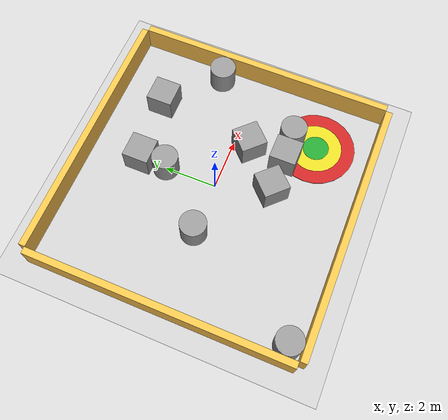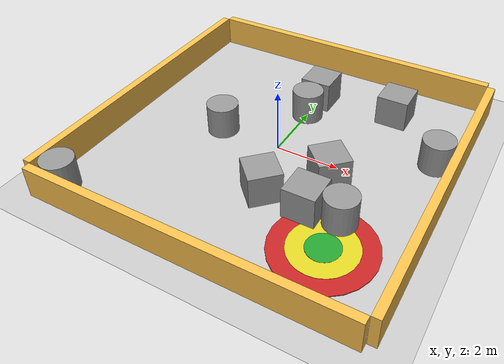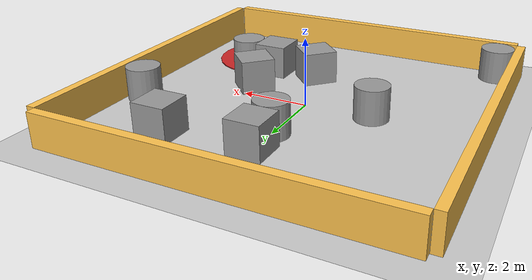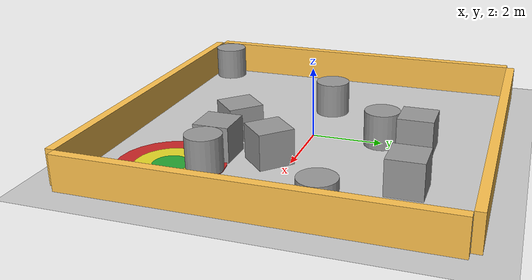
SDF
<sdf version="1.6">
 <world name="default">
  <light name="sun" type="directional">
   <pose>0 0 10 0 -0 0</pose>
   <diffuse>0.8 0.8 0.8 1</diffuse>
   <specular>0.2 0.2 0.2 1</specular>
   <attenuation>
    <range>1000</range>
    <constant>0.9</constant>
    <linear>0.01</linear>
    <quadratic>0.001</quadratic>
   </attenuation>
   <direction>0.5 0.1 -0.9</direction>
  </light>
  <model name="ground_plane">
   <static>1</static>
   <link name="link">
    <collision name="collision">
     <geometry><plane><normal>0 0 1</normal><size>100 100</size></plane></geometry>
     <surface><friction><ode><mu>100</mu><mu2>50</mu2></ode></friction></surface>
    </collision>
    <visual name="visual">
     <cast_shadows>0</cast_shadows>
     <geometry><plane><normal>0 0 1</normal><size>100 100</size></plane></geometry>
     <material>
      <script><uri>file://media/materials/scripts/gazebo.material</uri><name>Gazebo/Grey</name></script>
     </material>
    </visual>
    <velocity_decay><linear>0</linear><angular>0</angular></velocity_decay>
   </link>
  </model>
  <scene><ambient>0.4 0.4 0.4 1</ambient><background>0.7 0.7 0.7 1</background><shadows>0</shadows></scene>
  <physics name="default_physics" default="0" type="ode">
   <max_step_size>0.01</max_step_size>
   <real_time_factor>1</real_time_factor>
   <real_time_update_rate>0</real_time_update_rate>
  </physics>
  <gravity>0 0 -9.8</gravity>
  <magnetic_field>6e-06 2.3e-05 -4.2e-05</magnetic_field>
  <atmosphere type="adiabatic"/>
  <audio><device>default</device></audio>
  <spherical_coordinates>
   <surface_model>EARTH_WGS84</surface_model>
   <latitude_deg>0</latitude_deg>
   <longitude_deg>0</longitude_deg>
   <elevation>0</elevation>
   <heading_deg>0</heading_deg>
  </spherical_coordinates>
  <model name="Boundaries">
   <link name="Wall_6">
    <pose>-2.4 -3.04601 0 0 -0 0</pose>
    <inertial>
     <inertia><ixx>0</ixx><ixy>0</ixy><ixz>0</ixz><iyy>0</iyy><iyz>0</iyz><izz>0</izz></inertia>
     <mass>0</mass>
    </inertial>
    <visual name="Wall_6_Visual">
     <pose>0 0 0.5 0 -0 0</pose>
     <geometry><box><size>10 0.253759 1</size></box></geometry>
     <material>
      <script><uri>file://media/materials/scripts/gazebo.material</uri><name>Gazebo/Grey</name></script>
      <ambient>1 0.764706 0.305882 1</ambient>
      <diffuse>0.7 0.7 0.7 1</diffuse>
      <specular>0.01 0.01 0.01 1</specular>
      <emissive>0 0 0 1</emissive>
      <shader type="pixel"/>
     </material>
    </visual>
    <collision name="Wall_6_Collision">
     <pose>0 0 0.5 0 -0 0</pose>
     <geometry><box><size>10 0.253759 1</size></box></geometry>
     <surface>
      <friction>
       <ode><mu>1</mu><mu2>1</mu2><fdir1>0 0 0</fdir1><slip1>0</slip1><slip2>0</slip2></ode>
       <torsional>
        <coefficient>1</coefficient>
        <patch_radius>0</patch_radius>
        <surface_radius>0</surface_radius>
        <use_patch_radius>1</use_patch_radius>
        <ode><slip>0</slip></ode>
       </torsional>
      </friction>
      <bounce><restitution_coefficient>0</restitution_coefficient><threshold>1e+06</threshold></bounce>
      <contact>
       <collide_without_contact>0</collide_without_contact>
       <collide_without_contact_bitmask>1</collide_without_contact_bitmask>
       <collide_bitmask>1</collide_bitmask>
       <ode>
        <soft_cfm>0</soft_cfm>
        <soft_erp>0.2</soft_erp>
        <kp>1e+13</kp>
        <kd>1</kd>
        <max_vel>0.01</max_vel>
        <min_depth>0</min_depth>
       </ode>
       <bullet>
        <split_impulse>1</split_impulse>
        <split_impulse_penetration_threshold>-0.01</split_impulse_penetration_threshold>
        <soft_cfm>0</soft_cfm>
        <soft_erp>0.2</soft_erp>
        <kp>1e+13</kp>
        <kd>1</kd>
       </bullet>
      </contact>
     </surface>
    </collision>
   </link>
   <link name="Wall_6_clone">
    <pose>-7.53349 2.1 0 0 0 -1.5708</pose>
    <inertial>
     <inertia><ixx>0</ixx><ixy>0</ixy><ixz>0</ixz><iyy>0</iyy><iyz>0</iyz><izz>0</izz></inertia>
     <mass>0</mass>
    </inertial>
    <visual name="Wall_6_Visual">
     <pose>0 0 0.5 0 -0 0</pose>
     <geometry><box><size>10 0.253759 1</size></box></geometry>
     <material>
      <script><uri>file://media/materials/scripts/gazebo.material</uri><name>Gazebo/Grey</name></script>
      <ambient>1 0.764706 0.305882 1</ambient>
      <diffuse>0.7 0.7 0.7 1</diffuse>
      <specular>0.01 0.01 0.01 1</specular>
      <emissive>0 0 0 1</emissive>
      <shader type="pixel"/>
     </material>
    </visual>
    <collision name="Wall_6_Collision">
     <pose>0 0 0.5 0 -0 0</pose>
     <geometry><box><size>10 0.253759 1</size></box></geometry>
     <surface>
      <friction>
       <ode><mu>1</mu><mu2>1</mu2><fdir1>0 0 0</fdir1><slip1>0</slip1><slip2>0</slip2></ode>
       <torsional>
        <coefficient>1</coefficient>
        <patch_radius>0</patch_radius>
        <surface_radius>0</surface_radius>
        <use_patch_radius>1</use_patch_radius>
        <ode><slip>0</slip></ode>
       </torsional>
      </friction>
      <bounce><restitution_coefficient>0</restitution_coefficient><threshold>1e+06</threshold></bounce>
      <contact>
       <collide_without_contact>0</collide_without_contact>
       <collide_without_contact_bitmask>1</collide_without_contact_bitmask>
       <collide_bitmask>1</collide_bitmask>
       <ode>
        <soft_cfm>0</soft_cfm>
        <soft_erp>0.2</soft_erp>
        <kp>1e+13</kp>
        <kd>1</kd>
        <max_vel>0.01</max_vel>
        <min_depth>0</min_depth>
       </ode>
       <bullet>
        <split_impulse>1</split_impulse>
        <split_impulse_penetration_threshold>-0.01</split_impulse_penetration_threshold>
        <soft_cfm>0</soft_cfm>
        <soft_erp>0.2</soft_erp>
        <kp>1e+13</kp>
        <kd>1</kd>
       </bullet>
      </contact>
     </surface>
    </collision>
   </link>
   <link name="Wall_6_clone_clone">
    <pose>-2.4 7.21616 0 0 -0 3.14159</pose>
    <inertial>
     <inertia><ixx>0</ixx><ixy>0</ixy><ixz>0</ixz><iyy>0</iyy><iyz>0</iyz><izz>0</izz></inertia>
     <mass>0</mass>
    </inertial>
    <visual name="Wall_6_Visual">
     <pose>0 0 0.5 0 -0 0</pose>
     <geometry><box><size>10 0.253759 1</size></box></geometry>
     <material>
      <script><uri>file://media/materials/scripts/gazebo.material</uri><name>Gazebo/Grey</name></script>
      <ambient>1 0.765 0.306 1</ambient>
      <diffuse>0.7 0.7 0.7 1</diffuse>
      <specular>0.01 0.01 0.01 1</specular>
      <emissive>0 0 0 1</emissive>
      <shader type="pixel"><normal_map>__default__</normal_map></shader>
     </material>
    </visual>
    <collision name="Wall_6_Collision">
     <pose>0 0 0.5 0 -0 0</pose>
     <geometry><box><size>10 0.253759 1</size></box></geometry>
     <surface>
      <friction>
       <ode><mu>1</mu><mu2>1</mu2><fdir1>0 0 0</fdir1><slip1>0</slip1><slip2>0</slip2></ode>
       <torsional>
        <coefficient>1</coefficient>
        <patch_radius>0</patch_radius>
        <surface_radius>0</surface_radius>
        <use_patch_radius>1</use_patch_radius>
        <ode><slip>0</slip></ode>
       </torsional>
      </friction>
      <bounce><restitution_coefficient>0</restitution_coefficient><threshold>1e+06</threshold></bounce>
      <contact>
       <collide_without_contact>0</collide_without_contact>
       <collide_without_contact_bitmask>1</collide_without_contact_bitmask>
       <collide_bitmask>1</collide_bitmask>
       <ode>
        <soft_cfm>0</soft_cfm>
        <soft_erp>0.2</soft_erp>
        <kp>1e+13</kp>
        <kd>1</kd>
        <max_vel>0.01</max_vel>
        <min_depth>0</min_depth>
       </ode>
       <bullet>
        <split_impulse>1</split_impulse>
        <split_impulse_penetration_threshold>-0.01</split_impulse_penetration_threshold>
        <soft_cfm>0</soft_cfm>
        <soft_erp>0.2</soft_erp>
        <kp>1e+13</kp>
        <kd>1</kd>
       </bullet>
      </contact>
     </surface>
    </collision>
   </link>
   <link name="Wall_6_clone_clone_0">
    <pose>2.73718 2.0846 0 0 0 -1.5708</pose>
    <inertial>
     <inertia><ixx>0</ixx><ixy>0</ixy><ixz>0</ixz><iyy>0</iyy><iyz>0</iyz><izz>0</izz></inertia>
     <mass>0</mass>
    </inertial>
    <visual name="Wall_6_Visual">
     <pose>0 0 0.5 0 -0 0</pose>
     <geometry><box><size>10 0.253759 1</size></box></geometry>
     <material>
      <script><uri>file://media/materials/scripts/gazebo.material</uri><name>Gazebo/Grey</name></script>
      <ambient>1 0.764706 0.305882 1</ambient>
      <diffuse>0.7 0.7 0.7 1</diffuse>
      <specular>0.01 0.01 0.01 1</specular>
      <emissive>0 0 0 1</emissive>
      <shader type="pixel"/>
     </material>
    </visual>
    <collision name="Wall_6_Collision">
     <pose>0 0 0.5 0 -0 0</pose>
     <geometry><box><size>10 0.253759 1</size></box></geometry>
     <surface>
      <friction>
       <ode><mu>1</mu><mu2>1</mu2><fdir1>0 0 0</fdir1><slip1>0</slip1><slip2>0</slip2></ode>
       <torsional>
        <coefficient>1</coefficient>
        <patch_radius>0</patch_radius>
        <surface_radius>0</surface_radius>
        <use_patch_radius>1</use_patch_radius>
        <ode><slip>0</slip></ode>
       </torsional>
      </friction>
      <bounce><restitution_coefficient>0</restitution_coefficient><threshold>1e+06</threshold></bounce>
      <contact>
       <collide_without_contact>0</collide_without_contact>
       <collide_without_contact_bitmask>1</collide_without_contact_bitmask>
       <collide_bitmask>1</collide_bitmask>
       <ode>
        <soft_cfm>0</soft_cfm>
        <soft_erp>0.2</soft_erp>
        <kp>1e+13</kp>
        <kd>1</kd>
        <max_vel>0.01</max_vel>
        <min_depth>0</min_depth>
       </ode>
       <bullet>
        <split_impulse>1</split_impulse>
        <split_impulse_penetration_threshold>-0.01</split_impulse_penetration_threshold>
        <soft_cfm>0</soft_cfm>
        <soft_erp>0.2</soft_erp>
        <kp>1e+13</kp>
        <kd>1</kd>
       </bullet>
      </contact>
     </surface>
    </collision>
   </link>
   <static>1</static>
   <pose>2.39768 -2.08635 0 0 -0 0</pose>
  </model>
  <model name="Target">
   <static>1</static>
   <link name="green">
    <visual name="visual">
     <geometry><cylinder><radius>0.5</radius><length>0.05</length></cylinder></geometry>
     <material>
      <script><uri>file://media/materials/scripts/gazebo.material</uri><name>Gazebo/Green</name></script>
      <ambient>1 1 1 1</ambient>
     </material>
     <cast_shadows>0</cast_shadows>
    </visual>
   </link>
   <link name="yellow">
    <visual name="visual">
     <geometry><cylinder><radius>1</radius><length>0.04</length></cylinder></geometry>
     <material>
      <script><uri>file://media/materials/scripts/gazebo.material</uri><name>Gazebo/Yellow</name></script>
      <ambient>1 1 1 1</ambient>
     </material>
     <cast_shadows>0</cast_shadows>
    </visual>
   </link>
   <link name="red">
    <visual name="visual">
     <geometry><cylinder><radius>1.5</radius><length>0.03</length></cylinder></geometry>
     <material>
      <script><uri>file://media/materials/scripts/gazebo.material</uri><name>Gazebo/Red</name></script>
      <ambient>1 1 1 1</ambient>
     </material>
     <cast_shadows>0</cast_shadows>
    </visual>
   </link>
   <pose>3 -3 0 0 -0 0</pose>
  </model>
  <model name="unit_cylinder">
   <pose>4.49145 1.50804 0.499789 0.000422 0.000422 -1.4e-05</pose>
   <link name="link">
    <inertial>
     <mass>1</mass>
     <inertia><ixx>0.145833</ixx><ixy>0</ixy><ixz>0</ixz><iyy>0.145833</iyy><iyz>0</iyz><izz>0.125</izz></inertia>
    </inertial>
    <collision name="collision">
     <geometry><cylinder><radius>0.5</radius><length>1</length></cylinder></geometry>
    </collision>
    <visual name="visual">
     <geometry><cylinder><radius>0.5</radius><length>1</length></cylinder></geometry>
     <material>
      <script><name>Gazebo/Grey</name><uri>file://media/materials/scripts/gazebo.material</uri></script>
     </material>
    </visual>
   </link>
  </model>
  <model name="unit_cylinder_0">
   <pose>-4.50675 -4.49425 0.499789 0.000422 0.000422 -1.4e-05</pose>
   <link name="link">
    <inertial>
     <mass>1</mass>
     <inertia><ixx>0.145833</ixx><ixy>0</ixy><ixz>0</ixz><iyy>0.145833</iyy><iyz>0</iyz><izz>0.125</izz></inertia>
    </inertial>
    <collision name="collision">
     <geometry><cylinder><radius>0.5</radius><length>1</length></cylinder></geometry>
    </collision>
    <visual name="visual">
     <geometry><cylinder><radius>0.5</radius><length>1</length></cylinder></geometry>
     <material>
      <script><name>Gazebo/Grey</name><uri>file://media/materials/scripts/gazebo.material</uri></script>
     </material>
    </visual>
   </link>
  </model>
  <model name="unit_box">
   <pose>4.2e-05 2.99998 0.49912 0 -0 9e-06</pose>
   <link name="link">
    <inertial>
     <mass>1</mass>
     <inertia>
      <ixx>0.166667</ixx>
      <ixy>0</ixy>
      <ixz>0</ixz>
      <iyy>0.166667</iyy>
      <iyz>0</iyz>
      <izz>0.166667</izz>
     </inertia>
    </inertial>
    <collision name="collision"><geometry><box><size>1 1 1</size></box></geometry></collision>
    <visual name="visual">
     <geometry><box><size>1 1 1</size></box></geometry>
     <material>
      <script><name>Gazebo/Grey</name><uri>file://media/materials/scripts/gazebo.material</uri></script>
     </material>
    </visual>
   </link>
  </model>
  <model name="unit_cylinder_1">
   <pose>-4.9e-05 1.99964 0.49912 0 -0 3.6e-05</pose>
   <link name="link">
    <inertial>
     <mass>1</mass>
     <inertia><ixx>0.145833</ixx><ixy>0</ixy><ixz>0</ixz><iyy>0.145833</iyy><iyz>0</iyz><izz>0.125</izz></inertia>
    </inertial>
    <collision name="collision">
     <geometry><cylinder><radius>0.5</radius><length>1</length></cylinder></geometry>
    </collision>
    <visual name="visual">
     <geometry><cylinder><radius>0.5</radius><length>1</length></cylinder></geometry>
     <material>
      <script><name>Gazebo/Grey</name><uri>file://media/materials/scripts/gazebo.material</uri></script>
     </material>
    </visual>
   </link>
  </model>
  <model name="unit_cylinder_2">
   <pose>-1.99983 -0.000167 0.499789 0.000422 0.000422 -1.1e-05</pose>
   <link name="link">
    <inertial>
     <mass>1</mass>
     <inertia><ixx>0.145833</ixx><ixy>0</ixy><ixz>0</ixz><iyy>0.145833</iyy><iyz>0</iyz><izz>0.125</izz></inertia>
    </inertial>
    <collision name="collision">
     <geometry><cylinder><radius>0.5</radius><length>1</length></cylinder></geometry>
    </collision>
    <visual name="visual">
     <geometry><cylinder><radius>0.5</radius><length>1</length></cylinder></geometry>
     <material>
      <script><name>Gazebo/Grey</name><uri>file://media/materials/scripts/gazebo.material</uri></script>
     </material>
    </visual>
   </link>
  </model>
  <model name="unit_cylinder_3">
   <pose>3.00055 -2.0002 0.499789 0.000422 0.000422 -2.6e-05</pose>
   <link name="link">
    <inertial>
     <mass>1</mass>
     <inertia><ixx>0.145833</ixx><ixy>0</ixy><ixz>0</ixz><iyy>0.145833</iyy><iyz>0</iyz><izz>0.125</izz></inertia>
    </inertial>
    <collision name="collision">
     <geometry><cylinder><radius>0.5</radius><length>1</length></cylinder></geometry>
    </collision>
    <visual name="visual">
     <geometry><cylinder><radius>0.5</radius><length>1</length></cylinder></geometry>
     <material>
      <script><name>Gazebo/Grey</name><uri>file://media/materials/scripts/gazebo.material</uri></script>
     </material>
    </visual>
   </link>
  </model>
  <model name="unit_box_0">
   <pose>2.00002 -2.04847 0.49967 -0.00066 -0 0.00024</pose>
   <link name="link">
    <inertial>
     <mass>1</mass>
     <inertia>
      <ixx>0.166667</ixx>
      <ixy>0</ixy>
      <ixz>0</ixz>
      <iyy>0.166667</iyy>
      <iyz>0</iyz>
      <izz>0.166667</izz>
     </inertia>
    </inertial>
    <collision name="collision"><geometry><box><size>1 1 1</size></box></geometry></collision>
    <visual name="visual">
     <geometry><box><size>1 1 1</size></box></geometry>
     <material>
      <script><name>Gazebo/Grey</name><uri>file://media/materials/scripts/gazebo.material</uri></script>
     </material>
    </visual>
   </link>
  </model>
  <model name="unit_box_1">
   <pose>2.59701 3.21863 0.49907 0 0.0001 -4.6e-05</pose>
   <link name="link">
    <inertial>
     <mass>1</mass>
     <inertia>
      <ixx>0.166667</ixx>
      <ixy>0</ixy>
      <ixz>0</ixz>
      <iyy>0.166667</iyy>
      <iyz>0</iyz>
      <izz>0.166667</izz>
     </inertia>
    </inertial>
    <collision name="collision"><geometry><box><size>1 1 1</size></box></geometry></collision>
    <visual name="visual">
     <geometry><box><size>1 1 1</size></box></geometry>
     <material>
      <script><name>Gazebo/Grey</name><uri>file://media/materials/scripts/gazebo.material</uri></script>
     </material>
    </visual>
   </link>
  </model>
  <model name="unit_box_1_clone">
   <pose>1.99985 -0.588454 0.499795 -0.00041 -0 0.785398</pose>
   <link name="link">
    <inertial>
     <mass>1</mass>
     <inertia>
      <ixx>0.166667</ixx>
      <ixy>0</ixy>
      <ixz>0</ixz>
      <iyy>0.166667</iyy>
      <iyz>0</iyz>
      <izz>0.166667</izz>
     </inertia>
    </inertial>
    <collision name="collision"><geometry><box><size>1 1 1</size></box></geometry></collision>
    <visual name="visual">
     <geometry><box><size>1 1 1</size></box></geometry>
     <material>
      <script><name>Gazebo/Grey</name><uri>file://media/materials/scripts/gazebo.material</uri></script>
     </material>
    </visual>
   </link>
  </model>
  <model name="unit_box_1_clone_clone">
   <pose>0.594993 -2.00015 0.499795 0.00041 0 0.785398</pose>
   <link name="link">
    <inertial>
     <mass>1</mass>
     <inertia>
      <ixx>0.166667</ixx>
      <ixy>0</ixy>
      <ixz>0</ixz>
      <iyy>0.166667</iyy>
      <iyz>0</iyz>
      <izz>0.166667</izz>
     </inertia>
    </inertial>
    <collision name="collision"><geometry><box><size>1 1 1</size></box></geometry></collision>
    <visual name="visual">
     <geometry><box><size>1 1 1</size></box></geometry>
     <material>
      <script><name>Gazebo/Grey</name><uri>file://media/materials/scripts/gazebo.material</uri></script>
     </material>
    </visual>
   </link>
  </model>
 </world>
</sdf>
